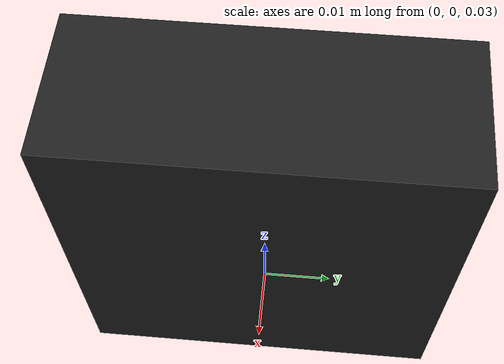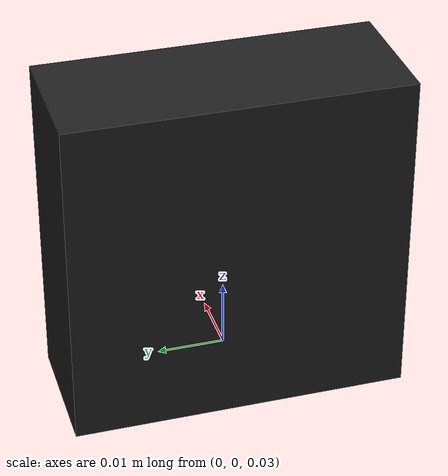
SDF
<?xml version="1.0" ?>
<sdf version="1.5">
  <model name="camera">
    <pose>0 0 0.05 0 0 0</pose>
    <link name="link">
      <inertial>
        <mass>0.01</mass>
        <inertia>
          <ixx>0.000166667</ixx>
          <iyy>0.000166667</iyy>
          <izz>0.000166667</izz>
        </inertia>
      </inertial>
      <collision name="collision">
        <geometry>
          <box>
            <size>0.02 0.05 0.05</size>
          </box>
        </geometry>
      </collision>
      <visual name="visual">
        <geometry>
          <box>
            <size>0.02 0.05 0.05</size>
          </box>
        </geometry>
        <material>
          <script>
            <name>Gazebo/FlatBlack</name>
          </script>
        </material>
      </visual>
      <sensor name="camera" type="camera">
        <camera>
          <horizontal_fov>1.047</horizontal_fov>
          <image>
            <width>320</width>
            <height>240</height>
          </image>
          <clip>
            <near>0.02</near>
            <far>100</far>
          </clip>
        </camera>
        <always_on>1</always_on>
        <update_rate>30</update_rate>
        <visualize>true</visualize>
        <plugin name="camera_controller" filename="libgazebo_ros_camera.so">
          <alwaysOn>true</alwaysOn>
          <updateRate>0.0</updateRate>
          <cameraName>rrbot/camera1</cameraName>
          <imageTopicName>image_raw</imageTopicName>
          <cameraInfoTopicName>camera_info</cameraInfoTopicName>
          <frameName>camera_link</frameName>
          <hackBaseline>0.07</hackBaseline>
         <distortionK1>0.0</distortionK1>
         <distortionK2>0.0</distortionK2>
         <distortionK3>0.0</distortionK3>
         <distortionT1>0.0</distortionT1>
         <distortionT2>0.0</distortionT2>
        </plugin>
      </sensor>
    </link>
  </model>
</sdf>
